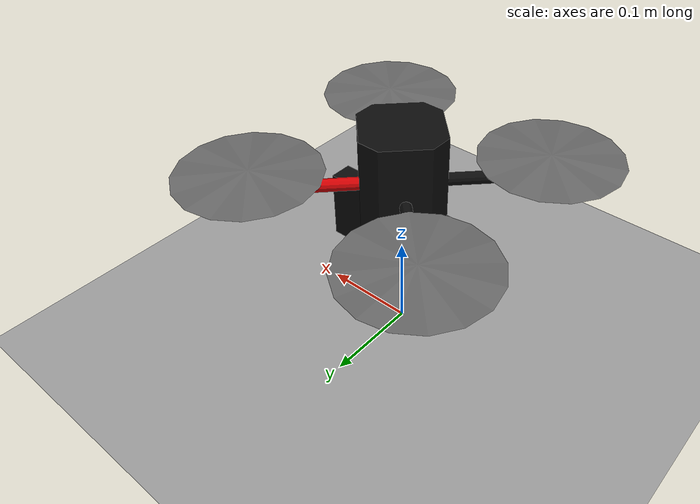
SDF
<?xml version="1.0"?>
<sdf version="1.4">
  <world name="default">
    <!-- Light Source -->
    <light type="directional" name="sun">
      <cast_shadows>true</cast_shadows>
      <pose>0 0 5 0 0 0</pose>
      <diffuse>0.8 0.8 0.8 1</diffuse>
      <specular>0.2 0.2 0.2 1</specular>
      <attenuation>
        <range>1000</range>
        <constant>0.9</constant>
        <linear>0.01</linear>
        <quadratic>0.001</quadratic>
      </attenuation>
      <direction>1 1 -1</direction>
    </light>
    <!-- Ground Plane -->
    <include>
      <uri>model://ground_plane_with_visual_plugin</uri>
    </include>
    <include>
      <uri>model://quadrotor</uri>
    </include>
    <plugin name="gazebo_rosmatlab_bridge" filename="libgazebo_rosmatlab_bridge.so">
      <links>quadrotor::link</links>
    </plugin>
  </world>
</sdf>

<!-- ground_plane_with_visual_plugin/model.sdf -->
<sdf version="1.4">
  <model name="ground_plane_with_visual_plugin">
    <static>true</static>
    <link name="link">
      <collision name="collision">
        <geometry>
          <plane>
            <normal>0 0 1</normal>
            <size>100 100</size>
          </plane>
        </geometry>
        <surface>
          <friction>
            <ode>
              <mu>100</mu>
              <mu2>50</mu2>
            </ode>
          </friction>
        </surface>
      </collision>
      <visual name="visual">
        <cast_shadows>false</cast_shadows>
        <plugin name="trajectory_visualizer" filename="libtrajectory_visualizer.so"/>
        <geometry>
          <plane>
            <normal>0 0 1</normal>
            <size>100 100</size>
          </plane>
        </geometry>
        <material>
          <script>
            <uri>file://media/materials/scripts/gazebo.material</uri>
            <name>Gazebo/Grey</name>
          </script>
        </material>
      </visual>
    </link>
  </model>
</sdf>

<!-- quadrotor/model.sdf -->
<sdf version="1.5">
  <model name="quadrotor">
    <link name="link">
      <pose>0 0 0.182466 0 0 0</pose>
      <inertial>
        <mass>1.316</mass>
        <inertia>
          <ixx>0.0128</ixx>
          <ixy>0</ixy>
          <ixz>0</ixz>
          <iyy>0.0128</iyy>
          <iyz>0</iyz>
          <izz>0.0218</izz>
        </inertia>
      </inertial>
      <collision name="collision">
        <geometry>
          <mesh>
            <uri>model://../model_source/models/quadrotor/meshes/quadrotor_base.dae</uri>
          </mesh>
        </geometry>
      </collision>
      <visual name="visual">
        <geometry>
          <mesh>
            <uri>model://../model_source/models/quadrotor/meshes/quadrotor_base.dae</uri>
          </mesh>
        </geometry>
      </visual>
    </link>
  </model>
</sdf>
